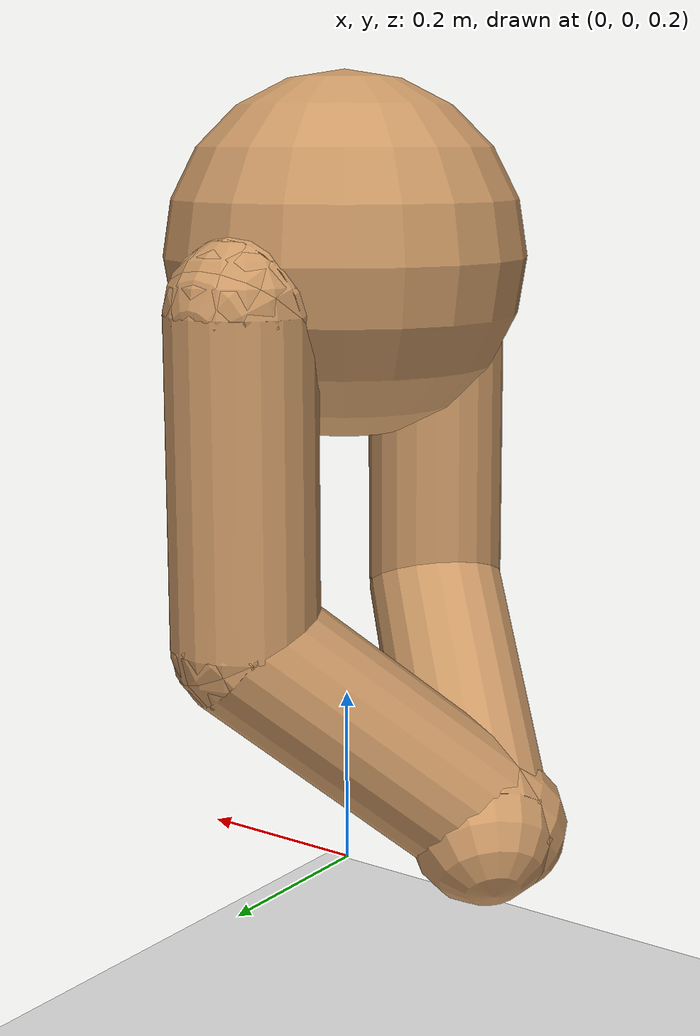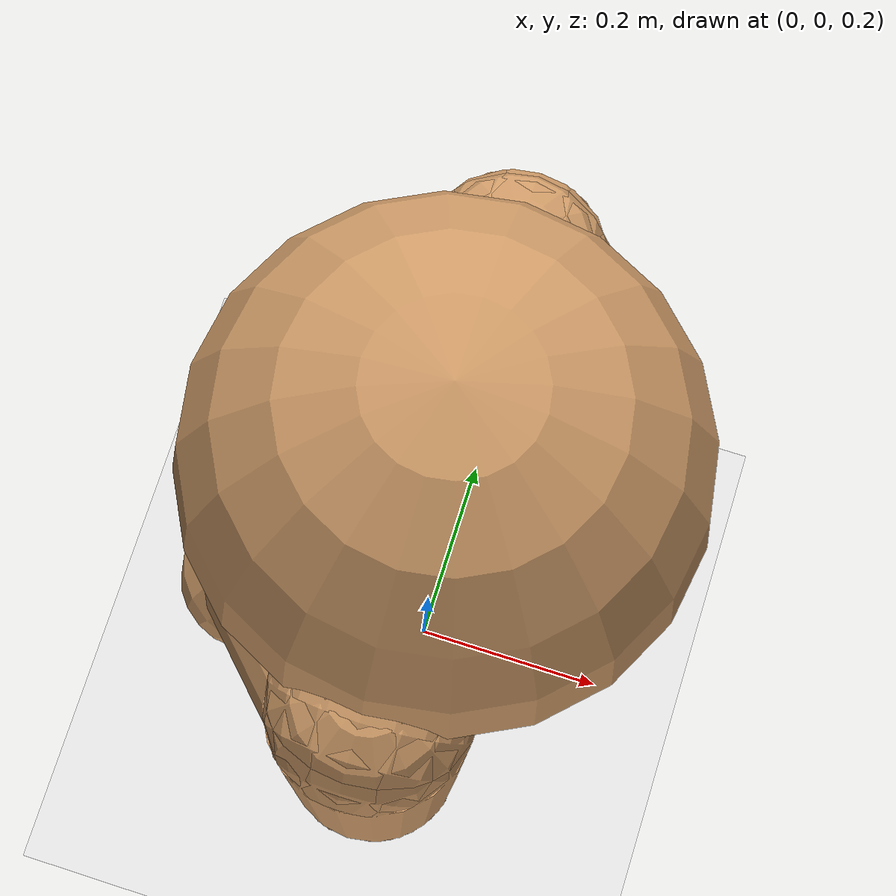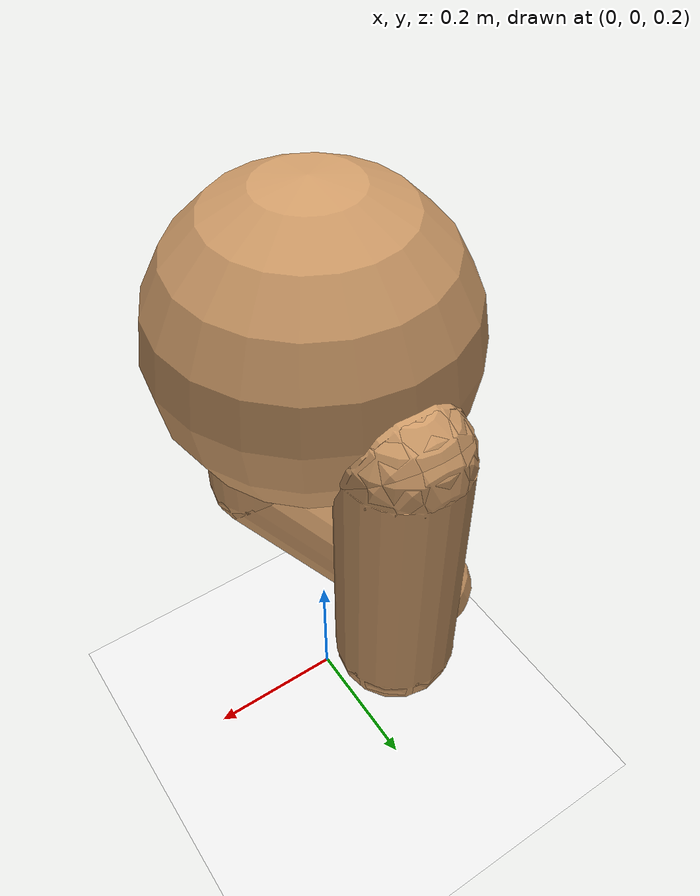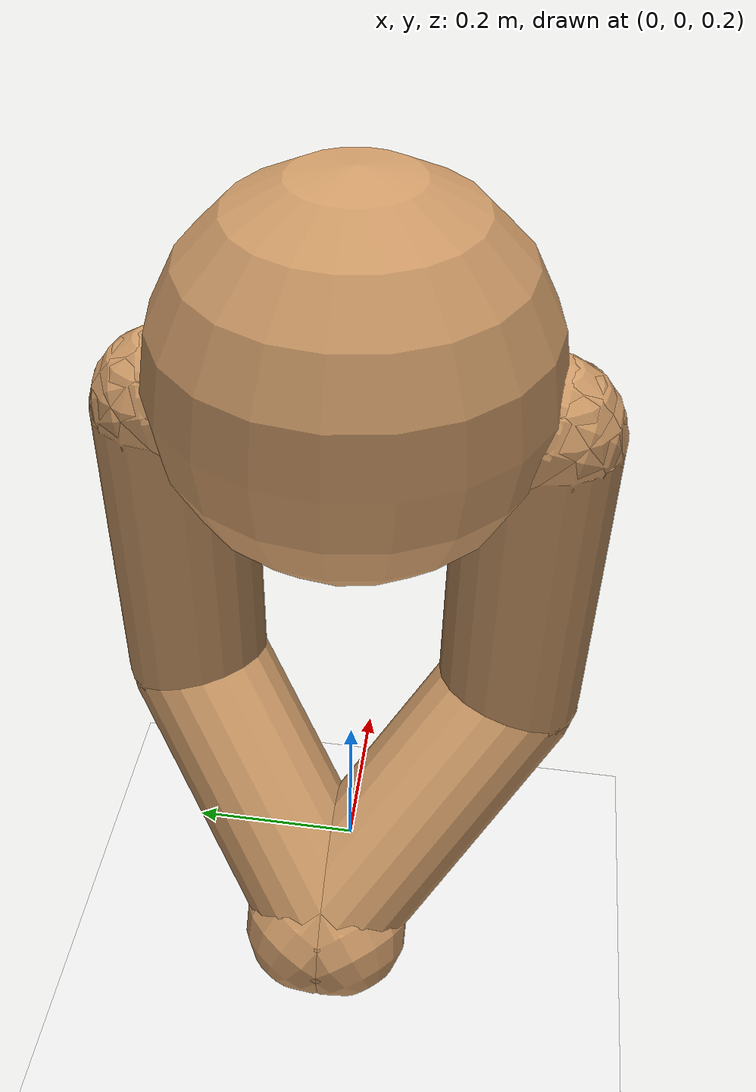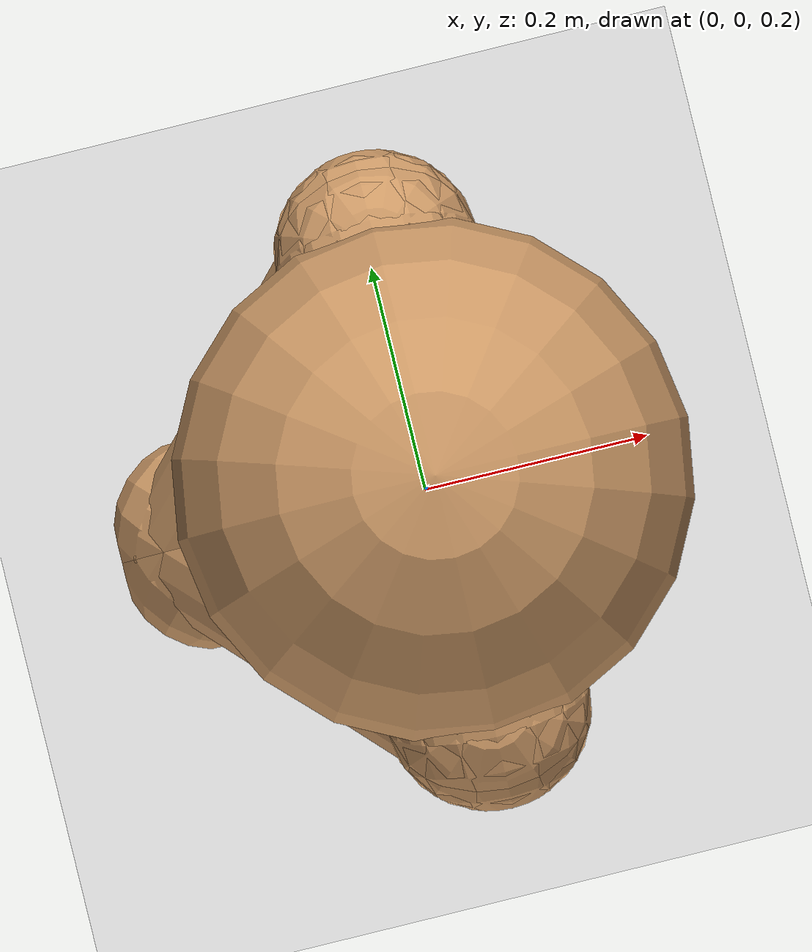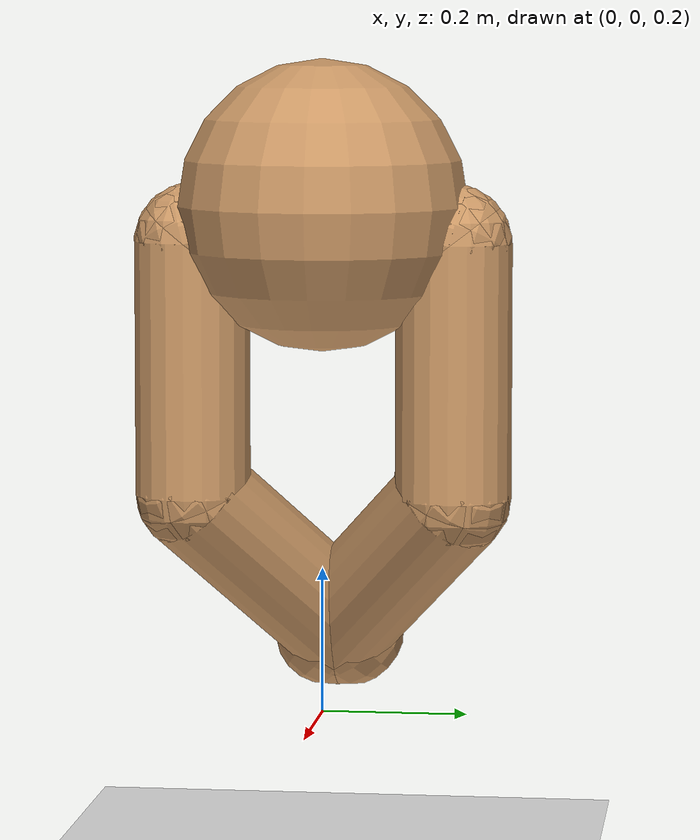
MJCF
<mujoco model="biped_ant_style">
  <compiler angle="radian"/>
  <visual>
    <global offwidth="1280" offheight="720"/>
  </visual>
  <default>
    <joint solreflimit="0.04" solimplimit="0 0.8 0.03" stiffness="1" limited="true" armature="1" damping="1"/>
    <geom friction="1 0.5 0.5" solimp="0 0.8 0.01" density="50" material="self"/>
    <general ctrllimited="true" ctrlrange="-1 1" gear="75 0 0 0 0 0"/>
  </default>

  <asset>
    <material name="self" rgba="0.8 0.6 0.4 1"/>
  </asset>

  <worldbody>
    <geom name="ground" size="10 10 0.1" type="plane" rgba="0.9 0.9 0.9 1"/>
    <camera name="sideon" target="torso" pos="0 -6 2.5" mode="targetbody"/>
    <body name="torso" pos="0 0 0.9">
      <joint name="root" type="free" solreflimit="0.02" solimplimit="0.9 0.95 0.001" stiffness="0" armature="0" damping="0"/>
      <geom name="torso_geom" size="0.2" density="100"/>
      <site name="torso_touch" pos="0 0 0" size="0.22 0.16 0.18" group="4" type="box" rgba="0 0 1 1"/>
      <site name="torso_site" pos="0 0 0" size="0.05" rgba="1 0 0 1"/>
      <body name="left_leg">
        <geom name="left_aux_geom" size="0.08 0.0934077" pos="0 0.09 -0.025" quat="0.796129 0.605126 0 0" type="capsule"/>
        <body name="left_aux" pos="0 0.18 -0.05">
          <joint name="left_hip" pos="0 0 0" axis="0 1 0" range="-0.7 0.7"/>
          <geom name="left_leg_geom" size="0.08 0.175" pos="0 0 -0.175" type="capsule"/>
          <site name="left_leg_touch" pos="0 0 -0.175" quat="0 1 0 0" size="0.1 0.1 0.25" group="4" type="box" rgba="1 1 0 0"/>
          <body name="left_foot" pos="0 0 -0.35" quat="0.90151 -0.306007 0.306007 0">
            <joint name="left_ankle" pos="0 0 0" axis="0.707107 -0.707107 0" range="-0.5 0.5"/>
            <geom name="left_ankle_geom" size="0.08 0.175" pos="0 0 -0.175" type="capsule"/>
            <site name="left_ankle_touch" pos="0 0 -0.175" quat="0 1 0 0" size="0.1 0.1 0.3" group="4" type="box" rgba="1 1 0 0"/>
          </body>
        </body>
      </body>
      <body name="right_leg">
        <geom name="right_aux_geom" size="0.08 0.0934077" pos="0 -0.09 -0.025" quat="0.796129 -0.605126 0 0" type="capsule"/>
        <body name="right_aux" pos="0 -0.18 -0.05">
          <joint name="right_hip" pos="0 0 0" axis="0 1 0" range="-0.7 0.7"/>
          <geom name="right_leg_geom" size="0.08 0.175" pos="0 0 -0.175" type="capsule"/>
          <site name="right_leg_touch" pos="0 0 -0.175" quat="0 1 0 0" size="0.1 0.1 0.25" group="4" type="box" rgba="1 1 0 0"/>
          <body name="right_foot" pos="0 0 -0.35" quat="0.90151 0.306007 0.306007 0">
            <joint name="right_ankle" pos="0 0 0" axis="-0.707107 -0.707107 0" range="-0.5 0.5"/>
            <geom name="right_ankle_geom" size="0.08 0.175" pos="0 0 -0.175" type="capsule"/>
            <site name="right_ankle_touch" pos="0 0 -0.175" quat="0 1 0 0" size="0.1 0.1 0.3" group="4" type="box" rgba="1 1 0 0"/>
          </body>
        </body>
      </body>
    </body>
  </worldbody>

  <contact>
    <exclude body1="torso" body2="left_aux"/>
    <exclude body1="torso" body2="right_aux"/>
  </contact>

  <actuator>
    <general name="left_hip" joint="left_hip"/>
    <general name="left_ankle" joint="left_ankle"/>
    <general name="right_hip" joint="right_hip"/>
    <general name="right_ankle" joint="right_ankle"/>
  </actuator>

  <sensor>
    <touch site="torso_touch" name="torso_touch"/>
    <touch site="left_leg_touch" name="left_leg_touch"/>
    <touch site="left_ankle_touch" name="left_ankle_touch"/>
    <touch site="right_leg_touch" name="right_leg_touch"/>
    <touch site="right_ankle_touch" name="right_ankle_touch"/>
    <velocimeter site="torso_site" name="torso_vel"/>
    <gyro site="torso_site" name="torso_gyro"/>
    <accelerometer site="torso_site" name="torso_accel"/>
  </sensor>
</mujoco>
